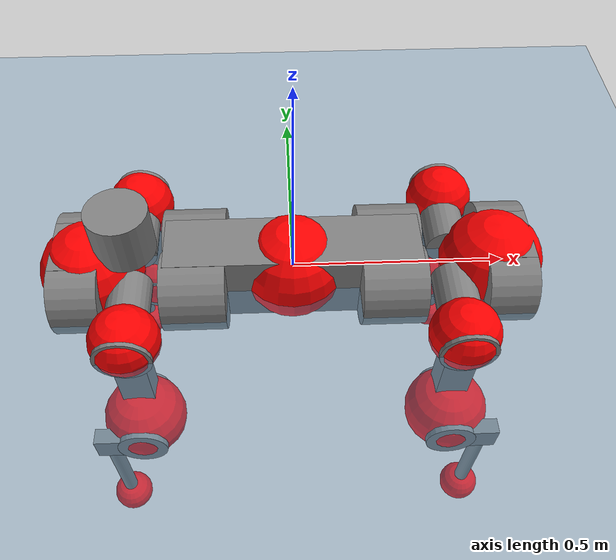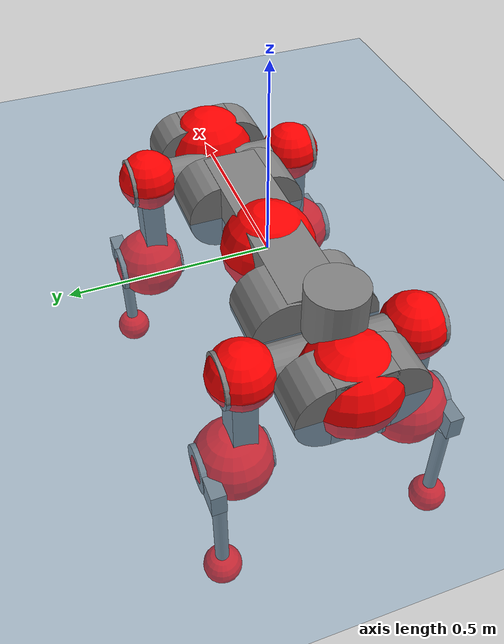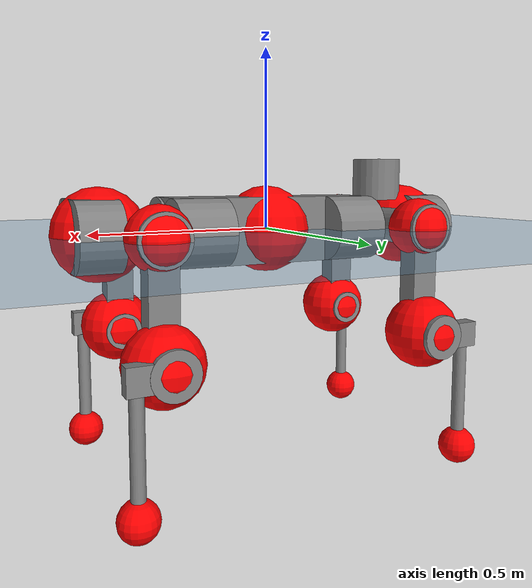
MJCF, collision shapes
<mujoco model="anymal_c">
  <compiler angle="radian" assetdir="assets" balanceinertia="true" inertiafromgeom="false"/>

  <option timestep="0.005" density="1.2" viscosity="2e-05"/>

  <size nkey="1"/>

  <visual>
    <quality shadowsize="8192"/>
    <map shadowclip="0.5"/>
  </visual>

  <default>
    <default class="/">
      <material specular="0" shininess="0.25"/>
      <geom contype="0" conaffinity="0" group="1" solref="-1000 -80"/>
      <site size="0.01 0.005 0.005" group="5"/>
      <general forcelimited="true" forcerange="-80 80" biastype="affine" gainprm="80" biasprm="0 -80 -2"/>
      <default class="anymal_c">
        <joint armature="0.01" damping="0.01" frictionloss="0.1"/>
        <default class="visual">
          <geom type="mesh" group="2"/>
          <default class="visual_zflip"/>
        </default>
        <default class="collision">
          <geom type="cylinder" group="3"/>
          <default class="foot">
            <geom size="0.03 0 0" type="sphere" condim="6" priority="1" friction="0.8 0.02 0.01" solimp="0.015 1 0.03"/>
          </default>
        </default>
      </default>
      <default class="reward_collision_sphere">
        <geom group="5" rgba="1 0 0 1"/>
      </default>
    </default>
  </default>

  <asset>
    <texture type="skybox" colorspace="auto" name="//unnamed_texture_0" builtin="gradient" rgb1="0.95 0.95 0.95" rgb2="0.95 0.95 0.95" width="100" height="600"/>
    <texture type="2d" colorspace="auto" name="texplane" builtin="checker" rgb1="0.345 0.575 0.748" rgb2="0.345 0.575 0.748" markrgb="1 1 1" width="512" height="512"/>
    <texture type="2d" colorspace="linear" name="base" file="base.png"/>
    <texture type="2d" colorspace="linear" name="top_shell" file="top_shell.png"/>
    <texture type="2d" colorspace="linear" name="bottom_shell" file="bottom_shell.png"/>
    <texture type="2d" colorspace="linear" name="remote" file="remote.png"/>
    <texture type="2d" colorspace="linear" name="hatch" file="hatch.png"/>
    <texture type="2d" colorspace="linear" name="handle" file="handle.png"/>
    <texture type="2d" colorspace="linear" name="face" file="face.png"/>
    <texture type="2d" colorspace="linear" name="battery" file="battery.png"/>
    <texture type="2d" colorspace="linear" name="lidar_cage" file="lidar_cage.png"/>
    <texture type="2d" colorspace="linear" name="depth_camera" file="depth_camera.png"/>
    <texture type="2d" colorspace="linear" name="wide_angle_camera" file="wide_angle_camera.png"/>
    <texture type="2d" colorspace="linear" name="lidar" file="lidar.png"/>
    <texture type="2d" colorspace="linear" name="drive" file="drive.png"/>
    <texture type="2d" colorspace="linear" name="hip_l" file="hip_l.png"/>
    <texture type="2d" colorspace="linear" name="shank_l" file="shank_l.png"/>
    <texture type="2d" colorspace="linear" name="foot" file="foot.png"/>
    <texture type="2d" colorspace="linear" name="thigh" file="thigh.png"/>
    <texture type="2d" colorspace="linear" name="shank_r" file="shank_r.png"/>
    <texture type="2d" colorspace="linear" name="hip_r" file="hip_r.png"/>
    <material name="MatPlane" class="/" texture="texplane" texuniform="true" texrepeat="2 2" specular="0.9" shininess="0.5"/>
    <material name="black_plastic" class="/" rgba="0.007 0.007 0.007 1"/>
    <material name="green" class="/" rgba="0.052 0.178 0.033 1"/>
    <material name="red" class="/" rgba="0.178 0.006 0.005 1"/>
    <material name="yellow" class="/" rgba="0.178 0.119 0.006 1"/>
    <material name="lwl" class="/" rgba="0.8 0.8 0.8 1"/>
    <material name="base" class="/" texture="base"/>
    <material name="top_shell" class="/" texture="top_shell"/>
    <material name="bottom_shell" class="/" texture="bottom_shell"/>
    <material name="hip_l" class="/" texture="hip_l"/>
    <material name="thigh" class="/" texture="thigh"/>
    <material name="shank_l" class="/" texture="shank_l"/>
    <material name="foot" class="/" texture="foot"/>
    <material name="hip_r" class="/" texture="hip_r"/>
    <material name="shank" class="/" texture="shank_r"/>
    <material name="hatch" class="/" texture="hatch"/>
    <material name="remote" class="/" texture="remote"/>
    <material name="handle" class="/" texture="handle"/>
    <material name="face" class="/" texture="face"/>
    <material name="depth_camera" class="/" texture="depth_camera"/>
    <material name="wide_angle_camera" class="/" texture="wide_angle_camera"/>
    <material name="battery" class="/" texture="battery"/>
    <material name="lidar_cage" class="/" texture="lidar_cage"/>
    <material name="lidar" class="/" texture="lidar"/>
    <material name="drive" class="/" texture="drive"/>
    <mesh name="base_0" class="/" file="base_0.obj"/>
    <mesh name="base_1" class="/" file="base_1.obj"/>
    <mesh name="base_2" class="/" file="base_2.obj"/>
    <mesh name="base_3" class="/" file="base_3.obj"/>
    <mesh name="base_4" class="/" file="base_4.obj"/>
    <mesh name="base_5" class="/" file="base_5.obj"/>
    <mesh name="top_shell" class="/" file="top_shell.obj"/>
    <mesh name="bottom_shell" class="/" file="bottom_shell.obj"/>
    <mesh name="remote" class="/" file="remote.obj"/>
    <mesh name="handle" class="/" file="handle.obj"/>
    <mesh name="face" class="/" file="face.obj"/>
    <mesh name="wide_angle_camera" class="/" file="wide_angle_camera.obj"/>
    <mesh name="depth_camera" class="/" file="depth_camera.obj"/>
    <mesh name="battery" class="/" file="battery.obj"/>
    <mesh name="lidar_cage" class="/" file="lidar_cage.obj"/>
    <mesh name="lidar" class="/" file="lidar.obj"/>
    <mesh name="drive" class="/" file="drive.obj"/>
    <mesh name="hip_l" class="/" file="hip_l.obj"/>
    <mesh name="thigh" class="/" file="thigh.obj"/>
    <mesh name="shank_l" class="/" file="shank_l.obj"/>
    <mesh name="foot" class="/" file="foot.obj"/>
    <mesh name="hip_r" class="/" file="hip_r.obj"/>
    <mesh name="hatch" class="/" file="hatch.obj"/>
    <mesh name="shank_r" class="/" file="shank_r.obj"/>
  </asset>

  <worldbody>
    <geom name="floor" class="/" size="100 100 0.125" type="plane" group="0" material="MatPlane"/>
    <light name="toplight_shadow" class="/" pos="0 0 5" dir="0.0990148 0.0990148 -0.990148" type="directional" ambient="0.04 0.04 0.04" diffuse="0.55 0.55 0.55" specular="0.12 0.12 0.12"/>
    <light name="toplight_fill" class="/" pos="0 0 5" dir="0.0990148 0.0990148 -0.990148" type="directional" castshadow="false" ambient="0.04 0.04 0.04" diffuse="0.3 0.3 0.3" specular="0.08 0.08 0.08"/>
    <body name="trunk" childclass="anymal_c" pos="-0.000524638 -0.00231627 0.000275102" quat="0.999999 -0.000704542 -0.000642665 0.000675921">
      <inertial pos="0.000539285 -0.00247616 0.0529355" quat="0.49548 0.498032 0.499501 0.506915" mass="19.8443" diaginertia="0.753221 0.486242 0.258468"/>
      <joint name="//unnamed_joint_0" type="free" armature="0" damping="0" frictionloss="0"/>
      <geom name="//unnamed_geom_1" class="visual" material="green" mesh="base_0"/>
      <geom name="//unnamed_geom_2" class="visual" material="yellow" mesh="base_1"/>
      <geom name="//unnamed_geom_3" class="visual" material="red" mesh="base_2"/>
      <geom name="//unnamed_geom_4" class="visual" material="black_plastic" mesh="base_3"/>
      <geom name="//unnamed_geom_5" class="visual" material="lwl" mesh="base_4"/>
      <geom name="//unnamed_geom_6" class="visual" material="base" mesh="base_5"/>
      <geom name="trunk_1" class="collision" size="0.293352 0.0708091 0.0910402" type="box"/>
      <geom name="trunk_2" class="collision" size="0.0910402 0.073338" pos="0.227426 0.0668269 0" quat="0.707107 0 0.707107 0"/>
      <geom name="trunk_3" class="collision" size="0.0910402 0.073338" pos="-0.227426 0.0668269 0" quat="0.707107 0 0.707107 0"/>
      <geom name="trunk_4" class="collision" size="0.0910402 0.073338" pos="0.227426 -0.0668269 0" quat="0.707107 0 0.707107 0"/>
      <geom name="trunk_5" class="collision" size="0.0910402 0.073338" pos="-0.227426 -0.0668269 0" quat="0.707107 0 0.707107 0"/>
      <geom name="//unnamed_geom_12" class="visual" material="top_shell" mesh="top_shell"/>
      <geom name="//unnamed_geom_13" class="visual" material="bottom_shell" mesh="bottom_shell"/>
      <geom name="//unnamed_geom_14" class="visual" material="remote" mesh="remote"/>
      <geom name="//unnamed_geom_15" class="visual" material="handle" mesh="handle"/>
      <geom name="//unnamed_geom_16" class="visual" pos="0.433417 0 0" quat="1 0 0 0" material="face" mesh="face"/>
      <geom name="trunk_6" class="collision" size="0.0556357 0.0708091 0.0910402" pos="0.490927 0 0" type="box"/>
      <geom name="//unnamed_geom_18" class="collision" size="0.0910402 0.0556357" pos="0.490927 0.0668269 0" quat="0.707107 0 0.707107 0"/>
      <geom name="//unnamed_geom_19" class="collision" size="0.0910402 0.0556357" pos="0.490927 -0.0668269 0" quat="0.707107 0 0.707107 0"/>
      <geom name="//unnamed_geom_20" class="visual" pos="0.482719 0 -0.0301178" quat="0.965926 0 0.258819 0" material="depth_camera" mesh="depth_camera"/>
      <geom name="//unnamed_geom_21" class="visual" pos="0.536413 0 0.0154845" material="wide_angle_camera" mesh="wide_angle_camera"/>
      <geom name="//unnamed_geom_22" class="visual_zflip" pos="-0.433417 0 0" quat="0 0 0 1" material="face" mesh="face"/>
      <geom name="trunk_7" class="collision" size="0.0556357 0.0708091 0.0910402" pos="-0.490927 0 0" quat="0 0 0 1" type="box"/>
      <geom name="//unnamed_geom_24" class="collision" size="0.0910402 0.0556357" pos="-0.490927 -0.0668269 0" quat="0 -0.707107 0 0.707107"/>
      <geom name="//unnamed_geom_25" class="collision" size="0.0910402 0.0556357" pos="-0.490927 0.0668269 0" quat="0 -0.707107 0 0.707107"/>
      <geom name="//unnamed_geom_26" class="visual" pos="-0.482719 0 -0.0301178" quat="0 -0.258819 0 0.965926" material="depth_camera" mesh="depth_camera"/>
      <geom name="//unnamed_geom_27" class="visual_zflip" pos="-0.536413 0 0.0154845" quat="0 0 0 1" material="wide_angle_camera" mesh="wide_angle_camera"/>
      <geom name="//unnamed_geom_28" class="visual" material="battery" mesh="battery"/>
      <geom name="//unnamed_geom_29" class="visual" pos="0 0.0717998 0.030134" quat="0.683013 -0.183013 0.183013 0.683013" material="depth_camera" mesh="depth_camera"/>
      <geom name="//unnamed_geom_30" class="visual" pos="0 -0.0717998 0.030134" quat="0.683013 0.183013 0.183013 -0.683013" material="depth_camera" mesh="depth_camera"/>
      <geom name="//unnamed_geom_31" class="visual" pos="-0.380612 0 0.076026" quat="1 0 0 0" material="lidar_cage" mesh="lidar_cage"/>
      <geom name="trunk_8" class="collision" size="0.0708091 0.0606935" pos="-0.380612 0 0.138088"/>
      <geom name="//unnamed_geom_33" class="visual" pos="-0.380612 -3.57394e-05 0.147087" quat="0.707107 0 0 -0.707107" material="lidar" mesh="lidar"/>
      <geom name="//unnamed_geom_34" class="visual" pos="0.313587 0.0993139 -1.37479e-09" quat="0.258819 0.965926 0 0" material="drive" mesh="drive"/>
      <geom name="//unnamed_geom_35" class="visual" pos="0.313587 -0.0993139 1.37479e-09" quat="0.258819 -0.965926 0 0" material="drive" mesh="drive"/>
      <geom name="//unnamed_geom_36" class="visual" pos="-0.313587 0.0993139 1.37479e-09" quat="0 0 0.965926 -0.258819" material="drive" mesh="drive"/>
      <geom name="//unnamed_geom_37" class="visual" pos="-0.313587 -0.0993139 -1.37479e-09" quat="0 0 -0.965926 -0.258819" material="drive" mesh="drive"/>
      <geom name="//unnamed_geom_38" class="visual" pos="0.121294 0 0.0755088" quat="1 0 0 0" material="hatch" mesh="hatch"/>
      <geom name="//unnamed_geom_39" class="reward_collision_sphere" size="0.121387"/>
      <geom name="//unnamed_geom_40" class="reward_collision_sphere" size="0.121387" pos="0.470537 0 0"/>
      <geom name="//unnamed_geom_41" class="reward_collision_sphere" size="0.121387" pos="-0.470537 0 0"/>
      <site name="imu" pos="0.263595 0.00788552 0.0478665" size="0.0101156"/>
      <camera name="track" pos="0 -1.90934 0" quat="0.707107 0.707107 0 0" mode="trackcom"/>
      <camera name="ego_camera" pos="0.470537 0 -0.0413747" quat="-0.5 -0.5 0.5 0.5"/>
      <body name="LF_HIP" pos="0.313013 0.0997241 0.000232418" quat="0.258842 0.96592 0.000120952 6.25919e-05">
        <inertial pos="0.0593444 -0.0170752 -0.008584" quat="-0.128139 0.703214 -0.141396 0.684893" mass="2.86099" diaginertia="0.0072445 0.00380124 0.00383953"/>
        <joint name="LF_HAA" pos="0 0 0" axis="0.999989 -0.00453275 -0.00145739" stiffness="0.00336518" range="-0.747848 0.512218" armature="0.00994197" damping="0.0113836" frictionloss="0.0994733"/>
        <geom name="//unnamed_geom_42" class="visual" pos="0 -8.08727e-05 1.32833e-05" quat="0.258819 -0.965926 0 0" material="hip_l" mesh="hip_l"/>
        <geom name="//unnamed_geom_43" class="visual" pos="0.0626338 -0.0747247 -0.0437318" quat="0.183013 -0.683013 0.683013 0.183013" material="drive" mesh="drive"/>
        <geom name="//unnamed_geom_44" class="collision" size="0.0505779 0.0708091" pos="0.0626338 -0.0114177 -0.0071423" quat="-0.353553 -0.612372 0.612372 -0.353553"/>
        <body name="LF_THIGH" pos="0.0656958 -0.0682916 -0.0436576" quat="0.181894 -0.683102 0.683218 0.183027">
          <inertial pos="0.0319336 0.00243534 -0.252994" quat="0.99306 -0.00653326 -0.0797203 0.0862153" mass="3.24874" diaginertia="0.0366181 0.0245349 0.00497021"/>
          <joint name="LF_HFE" pos="0 0 0" axis="0.999918 0.00572091 0.011426" stiffness="0.00477098" range="-3.19303 3.08479" armature="0.0113192" damping="0.00227979" frictionloss="0.092588"/>
          <geom name="//unnamed_geom_45" class="visual" pos="0.00180993 2.85203e-06 0" quat="0.707107 0 0 -0.707107" material="thigh" mesh="thigh"/>
          <geom name="//unnamed_geom_46" class="collision" size="0.0657513 0.0404623" pos="0.0418255 0 0" quat="0.5 0.5 -0.5 -0.5"/>
          <geom name="//unnamed_geom_47" class="collision" size="0.0379334 0.0303467 0.142947" pos="0.0313692 0 -0.146171" quat="0.707107 0 0 -0.707107" type="box"/>
          <geom name="//unnamed_geom_48" class="visual" pos="0.104878 0 -0.294795" quat="1 0 0 0" material="drive" mesh="drive"/>
          <geom name="//unnamed_geom_49" class="collision" size="0.0505779 0.0708091" pos="0.0316828 0 -0.294795" quat="0.707107 0 0.707107 0"/>
          <geom name="//unnamed_geom_50" class="reward_collision_sphere" size="0.0809247" pos="0.026141 0 0"/>
          <body name="LF_SHANK" pos="0.104456 -0.000877685 -0.292757" quat="1 0.00029968 3.63446e-05 -3.44016e-05">
            <inertial pos="0.00293282 -0.0605045 -0.0862147" quat="0.992967 -0.115477 -0.000963054 -0.0261004" mass="0.592843" diaginertia="0.0123807 0.00737071 0.00130089"/>
            <joint name="LF_KFE" pos="0 0 0" axis="1 0.000219704 0.000776548" stiffness="0.00184439" range="-3.09251 3.19392" armature="0.00922514" damping="0" frictionloss="0.100528"/>
            <geom name="//unnamed_geom_51" class="visual" pos="0.000590179 0.00314686 0" quat="0.707107 0 0 -0.707107" material="shank_l" mesh="shank_l"/>
            <geom name="LF_kfe_act" class="collision" size="0.0606935 0.0202312" pos="0.0209128 0 0" quat="0.5 0.5 -0.5 -0.5"/>
            <geom name="//unnamed_geom_53" class="collision" size="0.0581636 0.0341401 0.0192196" pos="0.0209128 -0.0548925 0" quat="0.5 0.5 -0.5 -0.5" type="box"/>
            <geom name="//unnamed_geom_54" class="visual" pos="0.0136454 -0.0829491 -0.349585" quat="0.382683 0 0 -0.92388" material="foot" mesh="foot"/>
            <geom name="LF_calf" class="collision" size="0.0177023 0.142885" pos="0.0136456 -0.0839632 -0.174792" quat="0.707107 0 0 -0.707107"/>
            <geom name="LF_foot" class="foot" size="0.0303394" pos="0.0136456 -0.0839632 -0.326312" quat="0.707107 0 0 -0.707107"/>
            <geom name="//unnamed_geom_57" class="reward_collision_sphere" size="0.101156" pos="-0.0522819 0 0"/>
            <geom name="//unnamed_geom_58" class="reward_collision_sphere" size="0.0505779" pos="0.0136456 -0.0839632 -0.326312"/>
            <site name="LF_foot" class="foot" pos="0.0136456 -0.0839632 -0.326312" quat="0.707107 0 0 -0.707107" size="0.0101156"/>
          </body>
        </body>
      </body>
      <body name="RF_HIP" pos="0.3115 -0.101042 -0.00150737" quat="0.258827 -0.965924 0.00013901 -0.000127034">
        <inertial pos="0.0603418 0.0156527 -0.00954405" quat="0.146479 0.673983 0.133849 0.7116" mass="2.88434" diaginertia="0.00714443 0.00390085 0.00392581"/>
        <joint name="RF_HAA" pos="0 0 0" axis="0.99994 0.00959575 -0.00524473" range="-0.501724 0.778144" armature="0.00963306" damping="0.00600757" frictionloss="0.0986352"/>
        <geom name="//unnamed_geom_59" class="visual" pos="0 8.08721e-05 1.32832e-05" quat="0.258819 0.965926 0 0" material="hip_r" mesh="hip_r"/>
        <geom name="//unnamed_geom_60" class="visual" pos="0.0626337 0.0747247 -0.0437318" quat="0.183013 0.683013 0.683013 -0.183013" material="drive" mesh="drive"/>
        <geom name="//unnamed_geom_61" class="collision" size="0.0505779 0.0708091" pos="0.0626338 0.0114177 -0.0071423" quat="-0.353553 0.612372 0.612372 0.353553"/>
        <body name="RF_THIGH" pos="0.0624291 0.0702364 -0.0455545" quat="0.182644 0.683113 0.683048 -0.182875">
          <inertial pos="0.0337182 -0.00232985 -0.251289" quat="0.992832 -0.00532515 -0.0805607 0.0881294" mass="3.17051" diaginertia="0.0368301 0.0237897 0.00497325"/>
          <joint name="RF_HFE" pos="0 0 0" axis="0.999977 0.00193318 -0.00645347" stiffness="0.0115982" range="-3.1531 3.14122" armature="0.00882836" damping="0.0246851" frictionloss="0.0906547"/>
          <geom name="//unnamed_geom_62" class="visual" pos="0.00180993 2.85203e-06 0" quat="0.707107 0 0 -0.707107" material="thigh" mesh="thigh"/>
          <geom name="//unnamed_geom_63" class="collision" size="0.0657513 0.0404623" pos="0.0418255 0 0" quat="0.5 0.5 0.5 0.5"/>
          <geom name="//unnamed_geom_64" class="collision" size="0.0379334 0.0303467 0.142947" pos="0.0313692 0 -0.146171" quat="0.707107 0 0 0.707107" type="box"/>
          <geom name="//unnamed_geom_65" class="visual" pos="0.104878 0 -0.294795" quat="1 0 0 0" material="drive" mesh="drive"/>
          <geom name="//unnamed_geom_66" class="collision" size="0.0505779 0.0708091" pos="0.0316828 0 -0.294795" quat="0.707107 0 0.707107 0"/>
          <geom name="//unnamed_geom_67" class="reward_collision_sphere" size="0.0809247" pos="0.026141 0 0"/>
          <body name="RF_SHANK" pos="0.105342 0.00136168 -0.292933" quat="1 0.000139403 -0.000123181 -0.000471778">
            <inertial pos="0.00386188 0.0607756 -0.0830718" quat="0.99299 0.116076 -0.00218465 0.0221796" mass="0.628026" diaginertia="0.0130182 0.00777991 0.00133119"/>
            <joint name="RF_KFE" pos="0 0 0" axis="0.999996 -0.00163335 0.00240747" range="-3.1255 3.12442" armature="0.0106502" damping="0" frictionloss="0.0999433"/>
            <geom name="//unnamed_geom_68" class="visual" pos="0.000590176 -0.00314686 0" quat="0.707107 0 0 0.707107" material="shank" mesh="shank_r"/>
            <geom name="RF_kfe_act" class="collision" size="0.0606935 0.0202312" pos="0.0209128 0 0" quat="0.5 0.5 0.5 0.5"/>
            <geom name="//unnamed_geom_70" class="collision" size="0.0581636 0.0341401 0.0192196" pos="0.0209128 0.0548925 0" quat="0.5 0.5 0.5 0.5" type="box"/>
            <geom name="//unnamed_geom_71" class="visual" pos="0.0136457 0.0829491 -0.349585" quat="0.382683 0 0 0.92388" material="foot" mesh="foot"/>
            <geom name="RF_calf" class="collision" size="0.0177023 0.142885" pos="0.0136456 0.0839632 -0.174792" quat="0.707107 0 0 0.707107"/>
            <geom name="RF_foot" class="foot" size="0.0281507" pos="0.0136456 0.0839632 -0.326312" quat="0.707107 0 0 0.707107"/>
            <geom name="//unnamed_geom_74" class="reward_collision_sphere" size="0.101156" pos="-0.0522819 0 0"/>
            <geom name="//unnamed_geom_75" class="reward_collision_sphere" size="0.0505779" pos="0.0136456 0.0839632 -0.326312"/>
            <site name="RF_foot" class="foot" pos="0.0136456 0.0839632 -0.326312" quat="0.707107 0 0 0.707107" size="0.0101156"/>
          </body>
        </body>
      </body>
      <body name="LH_HIP" pos="-0.313027 0.101144 0.00302776" quat="1.02503e-05 6.03402e-05 0.9659 -0.258914">
        <inertial pos="0.058369 0.0153072 -0.00669577" quat="0.13906 0.678557 0.125989 0.710176" mass="2.77932" diaginertia="0.00737717 0.00381689 0.00396024"/>
        <joint name="LH_HAA" pos="0 0 0" axis="1 0.00043948 -0.000226537" stiffness="0.00812611" range="-0.438294 0.722721" armature="0.0105938" damping="0.00904668" frictionloss="0.114715"/>
        <geom name="//unnamed_geom_76" class="visual" pos="0 8.08721e-05 1.32832e-05" quat="-0.258819 -0.965926 0 0" material="hip_r" mesh="hip_r"/>
        <geom name="//unnamed_geom_77" class="visual" pos="0.0626337 0.0747247 -0.0437318" quat="0.183013 0.683013 0.683013 -0.183013" material="drive" mesh="drive"/>
        <geom name="//unnamed_geom_78" class="collision" size="0.0505779 0.0708091" pos="0.0626338 0.0114177 -0.0071423" quat="-0.353553 0.612372 0.612372 0.353553"/>
        <body name="LH_THIGH" pos="0.062014 0.0686816 -0.0430221" quat="0.182832 0.683831 0.682056 -0.183702">
          <inertial pos="0.0326021 0.00212109 -0.253859" quat="0.992215 0.00719811 -0.0820278 0.0934244" mass="3.07149" diaginertia="0.0369526 0.0241793 0.00511523"/>
          <joint name="LH_HFE" pos="0 0 0" axis="0.999933 0.00499598 0.0104769" stiffness="0.00307417" range="-3.12176 3.13526" armature="0.0112692" damping="0.0232815" frictionloss="0.0924149"/>
          <geom name="//unnamed_geom_79" class="visual" pos="0.00180993 2.85203e-06 0" quat="0.707107 0 0 -0.707107" material="thigh" mesh="thigh"/>
          <geom name="//unnamed_geom_80" class="collision" size="0.0657513 0.0404623" pos="0.0418255 0 0" quat="0.5 0.5 -0.5 -0.5"/>
          <geom name="//unnamed_geom_81" class="collision" size="0.0379334 0.0303467 0.142947" pos="0.0313692 0 -0.146171" quat="0.707107 0 0 -0.707107" type="box"/>
          <geom name="//unnamed_geom_82" class="visual" pos="0.104878 0 -0.294795" quat="1 0 0 0" material="drive" mesh="drive"/>
          <geom name="//unnamed_geom_83" class="collision" size="0.0505779 0.0708091" pos="0.0316828 0 -0.294795" quat="0.707107 0 0.707107 0"/>
          <geom name="//unnamed_geom_84" class="reward_collision_sphere" size="0.0809247" pos="0.026141 0 0"/>
          <body name="LH_SHANK" pos="0.104202 0.0008399 -0.292956" quat="1 -4.79069e-05 0.000121253 0.000489425">
            <inertial pos="0.00584309 0.0611347 -0.0827738" quat="0.993008 0.115359 -0.000548784 0.0250315" mass="0.603242" diaginertia="0.012141 0.00699526 0.00126356"/>
            <joint name="LH_KFE" pos="0 0 0" axis="0.999965 -0.00472029 -0.00690029" stiffness="0.0090771" range="-3.0929 3.13849" armature="0.0113226" damping="0.0205784" frictionloss="0.0900822"/>
            <geom name="//unnamed_geom_85" class="visual" pos="0.000590176 -0.00314686 0" quat="-0.707107 0 0 -0.707107" material="shank" mesh="shank_r"/>
            <geom name="LH_kfe_act" class="collision" size="0.0606935 0.0202312" pos="0.0209128 0 0" quat="0.5 0.5 -0.5 -0.5"/>
            <geom name="//unnamed_geom_87" class="collision" size="0.0581636 0.0341401 0.0192196" pos="0.0209128 0.0548925 0" quat="0.5 0.5 -0.5 -0.5" type="box"/>
            <geom name="//unnamed_geom_88" class="visual" pos="0.0136457 0.0829491 -0.349585" quat="-0.382683 0 0 -0.92388" material="foot" mesh="foot"/>
            <geom name="LH_calf" class="collision" size="0.0177023 0.142885" pos="0.0136456 0.0839632 -0.174792" quat="0.707107 0 0 -0.707107"/>
            <geom name="LH_foot" class="foot" size="0.0301403" pos="0.0136456 0.0839632 -0.326312" quat="0.707107 0 0 -0.707107"/>
            <geom name="//unnamed_geom_91" class="reward_collision_sphere" size="0.101156" pos="-0.0522819 0 0"/>
            <geom name="//unnamed_geom_92" class="reward_collision_sphere" size="0.0505779" pos="0.0136456 0.0839632 -0.326312"/>
            <site name="LH_foot" class="foot" pos="0.0136456 0.0839632 -0.326312" quat="0.707107 0 0 -0.707107" size="0.0101156"/>
          </body>
        </body>
      </body>
      <body name="RH_HIP" pos="-0.315922 -0.0989967 0.00131369" quat="0.000778987 -0.000107349 -0.966172 -0.257896">
        <inertial pos="0.0592656 -0.0143971 -0.00763138" quat="-0.12873 0.709752 -0.136972 0.67891" mass="2.82755" diaginertia="0.00719739 0.0038213 0.00393437"/>
        <joint name="RH_HAA" pos="0 0 0" axis="0.999999 -0.00121523 0.00117332" stiffness="0.00825585" range="-0.703167 0.541155" armature="0.0114975" damping="0.0141481" frictionloss="0.11149"/>
        <geom name="//unnamed_geom_93" class="visual" pos="0 -8.08727e-05 1.32833e-05" quat="-0.258819 0.965926 0 0" material="hip_l" mesh="hip_l"/>
        <geom name="//unnamed_geom_94" class="visual" pos="0.0626338 -0.0747247 -0.0437318" quat="-0.183013 0.683013 -0.683013 -0.183013" material="drive" mesh="drive"/>
        <geom name="//unnamed_geom_95" class="collision" size="0.0505779 0.0708091" pos="0.0626338 -0.0114177 -0.0071423" quat="0.353553 0.612372 -0.612372 0.353553"/>
        <body name="RH_THIGH" pos="0.0601112 -0.0660376 -0.0434653" quat="-0.182957 0.683048 -0.68303 -0.182873">
          <inertial pos="0.0326348 -0.0027052 -0.25381" quat="0.99374 -0.00507024 -0.0760381 0.0816916" mass="3.1291" diaginertia="0.0377631 0.0235782 0.00476215"/>
          <joint name="RH_HFE" pos="0 0 0" axis="0.999999 0.000364042 0.00120351" stiffness="0.0101492" range="-3.14443 3.18777" armature="0.0088411" damping="0.0216874" frictionloss="0.102537"/>
          <geom name="//unnamed_geom_96" class="visual" pos="0.00180993 2.85203e-06 0" quat="0.707107 0 0 -0.707107" material="thigh" mesh="thigh"/>
          <geom name="//unnamed_geom_97" class="collision" size="0.0657513 0.0404623" pos="0.0418255 0 0" quat="0.5 0.5 0.5 0.5"/>
          <geom name="//unnamed_geom_98" class="collision" size="0.0379334 0.0303467 0.142947" pos="0.0313692 0 -0.146171" quat="0.707107 0 0 0.707107" type="box"/>
          <geom name="//unnamed_geom_99" class="visual" pos="0.104878 0 -0.294795" quat="1 0 0 0" material="drive" mesh="drive"/>
          <geom name="//unnamed_geom_100" class="collision" size="0.0505779 0.0708091" pos="0.0316828 0 -0.294795" quat="0.707107 0 0.707107 0"/>
          <geom name="//unnamed_geom_101" class="reward_collision_sphere" size="0.0809247" pos="0.026141 0 0"/>
          <body name="RH_SHANK" pos="0.106175 0.000266828 -0.293968" quat="1 -5.62651e-07 1.49482e-06 -6.87388e-06">
            <inertial pos="0.00405233 -0.059553 -0.0834441" quat="0.992929 -0.115958 -0.00133513 -0.0253597" mass="0.625293" diaginertia="0.0126023 0.00742411 0.00133291"/>
            <joint name="RH_KFE" pos="0 0 0" axis="0.999978 0.00584522 -0.00307103" range="-3.07468 3.15864" armature="0.0104087" damping="0.0157589" frictionloss="0.109572"/>
            <geom name="//unnamed_geom_102" class="visual" pos="0.000590179 0.00314686 0" quat="0.707107 0 0 -0.707107" material="shank_l" mesh="shank_l"/>
            <geom name="RH_kfe_act" class="collision" size="0.0606935 0.0202312" pos="0.0209128 0 0" quat="0.5 0.5 0.5 0.5"/>
            <geom name="//unnamed_geom_104" class="collision" size="0.0581636 0.0341401 0.0192196" pos="0.0209128 -0.0548925 0" quat="0.5 0.5 0.5 0.5" type="box"/>
            <geom name="//unnamed_geom_105" class="visual" pos="0.0136454 -0.0829491 -0.349585" quat="0.382683 0 0 -0.92388" material="foot" mesh="foot"/>
            <geom name="RH_calf" class="collision" size="0.0177023 0.142885" pos="0.0136456 -0.0839632 -0.174792" quat="0.707107 0 0 0.707107"/>
            <geom name="RH_foot" class="foot" size="0.0316758" pos="0.0136456 -0.0839632 -0.326312" quat="0.707107 0 0 0.707107"/>
            <geom name="//unnamed_geom_108" class="reward_collision_sphere" size="0.101156" pos="-0.0522819 0 0"/>
            <geom name="//unnamed_geom_109" class="reward_collision_sphere" size="0.0505779" pos="0.0136456 -0.0839632 -0.326312"/>
            <site name="RH_foot" class="foot" pos="0.0136456 -0.0839632 -0.326312" quat="0.707107 0 0 0.707107" size="0.0101156"/>
          </body>
        </body>
      </body>
    </body>
  </worldbody>

  <contact>
    <pair class="/" geom1="floor" geom2="LF_foot" name="//unnamed_contact_0"/>
    <pair class="/" geom1="floor" geom2="RF_foot" name="//unnamed_contact_1"/>
    <pair class="/" geom1="floor" geom2="LH_foot" name="//unnamed_contact_2"/>
    <pair class="/" geom1="floor" geom2="RH_foot" name="//unnamed_contact_3"/>
  </contact>

  <actuator>
    <general name="LF_HAA" class="/" joint="LF_HAA" forcerange="-86.1867 86.1867" gainprm="80.8484" biasprm="0 -80.8484 -2.07667"/>
    <general name="LF_HFE" class="/" joint="LF_HFE" forcerange="-81.4267 81.4267" gainprm="80.8484" biasprm="0 -80.8484 -2.07667"/>
    <general name="LF_KFE" class="/" joint="LF_KFE" forcerange="-79.4491 79.4491" gainprm="80.8484" biasprm="0 -80.8484 -2.07667"/>
    <general name="RF_HAA" class="/" joint="RF_HAA" forcerange="-77.6346 77.6346" gainprm="80.8484" biasprm="0 -80.8484 -2.07667"/>
    <general name="RF_HFE" class="/" joint="RF_HFE" forcerange="-82.5614 82.5614" gainprm="80.8484" biasprm="0 -80.8484 -2.07667"/>
    <general name="RF_KFE" class="/" joint="RF_KFE" forcerange="-73.3384 73.3384" gainprm="80.8484" biasprm="0 -80.8484 -2.07667"/>
    <general name="LH_HAA" class="/" joint="LH_HAA" forcerange="-82.9514 82.9514" gainprm="80.8484" biasprm="0 -80.8484 -2.07667"/>
    <general name="LH_HFE" class="/" joint="LH_HFE" forcerange="-82.1863 82.1863" gainprm="80.8484" biasprm="0 -80.8484 -2.07667"/>
    <general name="LH_KFE" class="/" joint="LH_KFE" forcerange="-81.66 81.66" gainprm="80.8484" biasprm="0 -80.8484 -2.07667"/>
    <general name="RH_HAA" class="/" joint="RH_HAA" forcerange="-78.5076 78.5076" gainprm="80.8484" biasprm="0 -80.8484 -2.07667"/>
    <general name="RH_HFE" class="/" joint="RH_HFE" forcerange="-82.5025 82.5025" gainprm="80.8484" biasprm="0 -80.8484 -2.07667"/>
    <general name="RH_KFE" class="/" joint="RH_KFE" forcerange="-89.5777 89.5777" gainprm="80.8484" biasprm="0 -80.8484 -2.07667"/>
  </actuator>

  <sensor>
    <gyro site="imu" name="imu_angular_velocity"/>
    <velocimeter site="imu" name="imu_linear_velocity"/>
    <framelinvel objtype="site" objname="LF_foot" name="LF_foot_global_linear_velocity"/>
    <framelinvel objtype="site" objname="RF_foot" name="RF_foot_global_linear_velocity"/>
    <framelinvel objtype="site" objname="LH_foot" name="LH_foot_global_linear_velocity"/>
    <framelinvel objtype="site" objname="RH_foot" name="RH_foot_global_linear_velocity"/>
  </sensor>

  <keyframe>
    <key name="home" qpos="0 0 0.55 1 0 0 0 0 0.4 -0.8 0 -0.4 0.8 0 -0.4 0.8 0 0.4 -0.8"/>
  </keyframe>
</mujoco>
